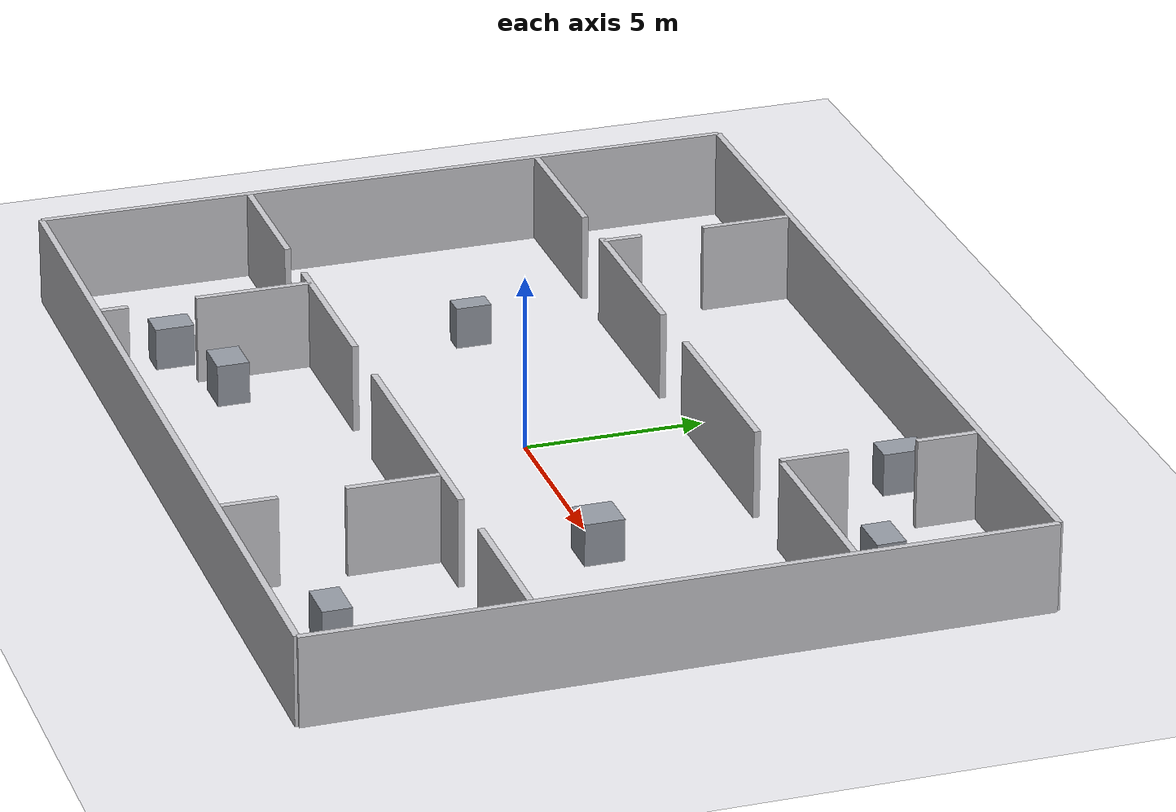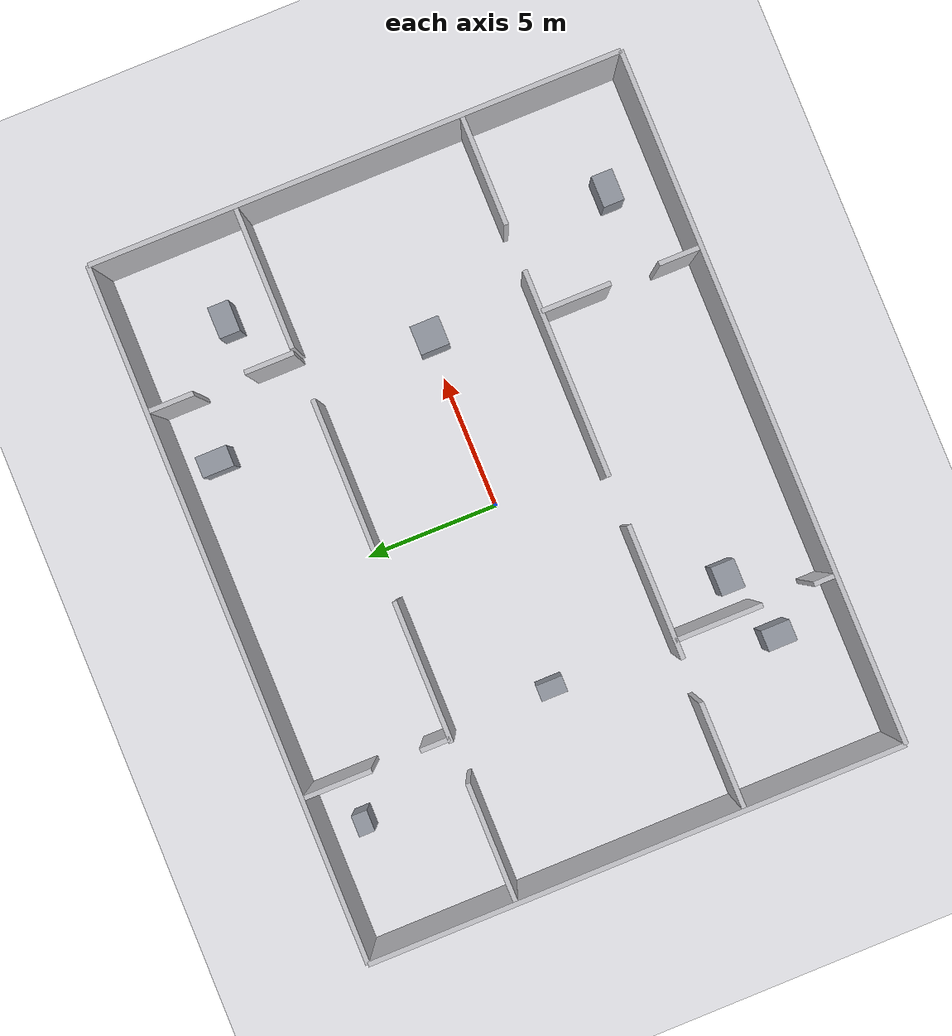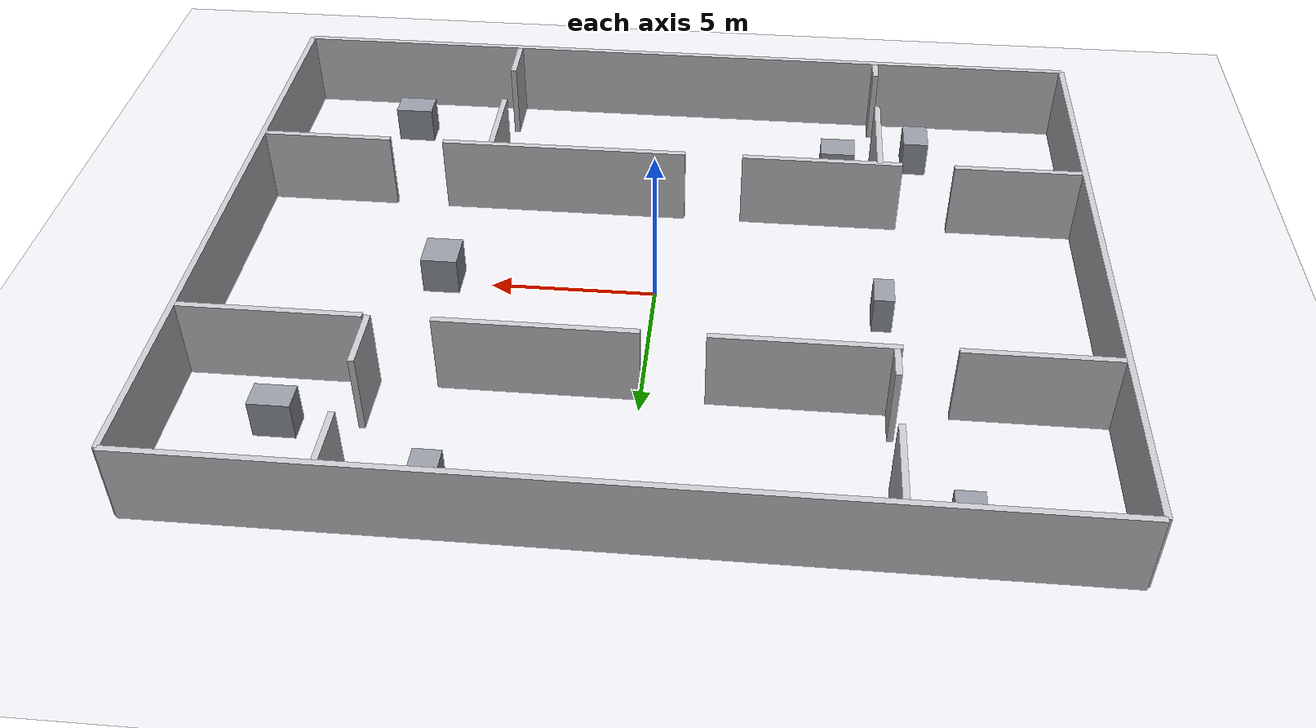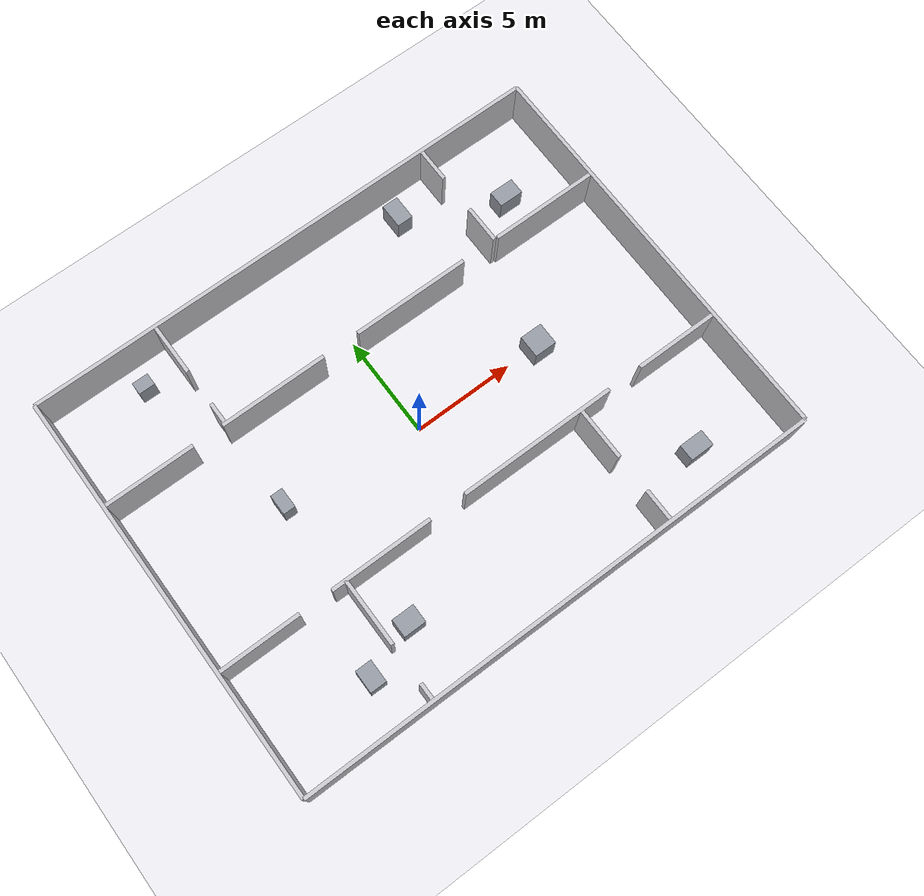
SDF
<?xml version="1.0"?>
<sdf version="1.9"><world name="new_room_world">
<plugin filename="gz-sim-physics-system" name="gz::sim::systems::Physics"/><plugin filename="gz-sim-user-commands-system" name="gz::sim::systems::UserCommands"/><plugin filename="gz-sim-scene-broadcaster-system" name="gz::sim::systems::SceneBroadcaster"/><plugin filename="gz-sim-sensors-system" name="gz::sim::systems::Sensors"><render_engine>ogre2</render_engine></plugin><plugin filename="gz-sim-imu-system" name="gz::sim::systems::Imu"/>
<physics name="new_room_realtime" type="ignored"><max_step_size>0.001</max_step_size><real_time_factor>1</real_time_factor></physics><gravity>0 0 -9.8</gravity><scene><ambient>0.85 0.85 0.87 1</ambient><background>0.68 0.68 0.71 1</background><shadows>false</shadows></scene><light name="sun" type="directional"><cast_shadows>false</cast_shadows><pose>0 0 10 0 0 0</pose><diffuse>0.95 0.95 0.95 1</diffuse><direction>-0.3 0.2 -1</direction></light>
<model name="new_room_ground"><static>true</static><link name="ground_link"><collision name="ground_collision"><geometry><plane><normal>0 0 1</normal><size>40 32</size></plane></geometry></collision><visual name="ground_visual"><geometry><plane><normal>0 0 1</normal><size>40 32</size></plane></geometry><material><ambient>0.92 0.92 0.94 1</ambient><diffuse>0.92 0.92 0.94 1</diffuse></material></visual></link></model>
<model name="mini_hospital_structure"><static>true</static><link name="structure">
<collision name="mx048_c000"><pose>0 10 1.25 0 0 0</pose><geometry><box><size>26 0.18 2.5</size></box></geometry></collision><visual name="mx048_v000"><pose>0 10 1.25 0 0 0</pose><geometry><box><size>26 0.18 2.5</size></box></geometry><material><ambient>0.78 0.78 0.80 1</ambient><diffuse>0.78 0.78 0.80 1</diffuse></material></visual>
<collision name="mx048_c001"><pose>0 -10 1.25 0 0 0</pose><geometry><box><size>26 0.18 2.5</size></box></geometry></collision><visual name="mx048_v001"><pose>0 -10 1.25 0 0 0</pose><geometry><box><size>26 0.18 2.5</size></box></geometry><material><ambient>0.78 0.78 0.80 1</ambient><diffuse>0.78 0.78 0.80 1</diffuse></material></visual>
<collision name="mx048_c002"><pose>-13 0 1.25 0 0 0</pose><geometry><box><size>0.18 20 2.5</size></box></geometry></collision><visual name="mx048_v002"><pose>-13 0 1.25 0 0 0</pose><geometry><box><size>0.18 20 2.5</size></box></geometry><material><ambient>0.78 0.78 0.80 1</ambient><diffuse>0.78 0.78 0.80 1</diffuse></material></visual>
<collision name="mx048_c003"><pose>13 0 1.25 0 0 0</pose><geometry><box><size>0.18 20 2.5</size></box></geometry></collision><visual name="mx048_v003"><pose>13 0 1.25 0 0 0</pose><geometry><box><size>0.18 20 2.5</size></box></geometry><material><ambient>0.78 0.78 0.80 1</ambient><diffuse>0.78 0.78 0.80 1</diffuse></material></visual>
<collision name="mx048_c004"><pose>-10.73 4.5 1.25 0 0 0</pose><geometry><box><size>4.36 0.18 2.5</size></box></geometry></collision><visual name="mx048_v004"><pose>-10.73 4.5 1.25 0 0 0</pose><geometry><box><size>4.36 0.18 2.5</size></box></geometry><material><ambient>0.78 0.78 0.80 1</ambient><diffuse>0.78 0.78 0.80 1</diffuse></material></visual>
<collision name="mx048_c005"><pose>-4.425 4.5 1.25 0 0 0</pose><geometry><box><size>5.25 0.18 2.5</size></box></geometry></collision><visual name="mx048_v005"><pose>-4.425 4.5 1.25 0 0 0</pose><geometry><box><size>5.25 0.18 2.5</size></box></geometry><material><ambient>0.78 0.78 0.80 1</ambient><diffuse>0.78 0.78 0.80 1</diffuse></material></visual>
<collision name="mx048_c006"><pose>2.875 4.5 1.25 0 0 0</pose><geometry><box><size>5.75 0.18 2.5</size></box></geometry></collision><visual name="mx048_v006"><pose>2.875 4.5 1.25 0 0 0</pose><geometry><box><size>5.75 0.18 2.5</size></box></geometry><material><ambient>0.78 0.78 0.80 1</ambient><diffuse>0.78 0.78 0.80 1</diffuse></material></visual>
<collision name="mx048_c007"><pose>10.28 4.5 1.25 0 0 0</pose><geometry><box><size>5.26 0.18 2.5</size></box></geometry></collision><visual name="mx048_v007"><pose>10.28 4.5 1.25 0 0 0</pose><geometry><box><size>5.26 0.18 2.5</size></box></geometry><material><ambient>0.78 0.78 0.80 1</ambient><diffuse>0.78 0.78 0.80 1</diffuse></material></visual>
<collision name="mx048_c008"><pose>-10.955 -4 1.25 0 0 0</pose><geometry><box><size>3.91 0.18 2.5</size></box></geometry></collision><visual name="mx048_v008"><pose>-10.955 -4 1.25 0 0 0</pose><geometry><box><size>3.91 0.18 2.5</size></box></geometry><material><ambient>0.78 0.78 0.80 1</ambient><diffuse>0.78 0.78 0.80 1</diffuse></material></visual>
<collision name="mx048_c009"><pose>-4.9 -4 1.25 0 0 0</pose><geometry><box><size>5 0.18 2.5</size></box></geometry></collision><visual name="mx048_v009"><pose>-4.9 -4 1.25 0 0 0</pose><geometry><box><size>5 0.18 2.5</size></box></geometry><material><ambient>0.78 0.78 0.80 1</ambient><diffuse>0.78 0.78 0.80 1</diffuse></material></visual>
<collision name="mx048_c010"><pose>3.275 -4 1.25 0 0 0</pose><geometry><box><size>7.75 0.18 2.5</size></box></geometry></collision><visual name="mx048_v010"><pose>3.275 -4 1.25 0 0 0</pose><geometry><box><size>7.75 0.18 2.5</size></box></geometry><material><ambient>0.78 0.78 0.80 1</ambient><diffuse>0.78 0.78 0.80 1</diffuse></material></visual>
<collision name="mx048_c011"><pose>10.88 -4 1.25 0 0 0</pose><geometry><box><size>4.06 0.18 2.5</size></box></geometry></collision><visual name="mx048_v011"><pose>10.88 -4 1.25 0 0 0</pose><geometry><box><size>4.06 0.18 2.5</size></box></geometry><material><ambient>0.78 0.78 0.80 1</ambient><diffuse>0.78 0.78 0.80 1</diffuse></material></visual>
<collision name="mx048_c012"><pose>-6.9 5.05 1.25 0 0 0</pose><geometry><box><size>0.18 1.1 2.5</size></box></geometry></collision><visual name="mx048_v012"><pose>-6.9 5.05 1.25 0 0 0</pose><geometry><box><size>0.18 1.1 2.5</size></box></geometry><material><ambient>0.78 0.78 0.80 1</ambient><diffuse>0.78 0.78 0.80 1</diffuse></material></visual>
<collision name="mx048_c013"><pose>-6.9 8.655 1.25 0 0 0</pose><geometry><box><size>0.18 2.51 2.5</size></box></geometry></collision><visual name="mx048_v013"><pose>-6.9 8.655 1.25 0 0 0</pose><geometry><box><size>0.18 2.51 2.5</size></box></geometry><material><ambient>0.78 0.78 0.80 1</ambient><diffuse>0.78 0.78 0.80 1</diffuse></material></visual>
<collision name="mx048_c014"><pose>7.5 5.425 1.25 0 0 0</pose><geometry><box><size>0.18 1.85 2.5</size></box></geometry></collision><visual name="mx048_v014"><pose>7.5 5.425 1.25 0 0 0</pose><geometry><box><size>0.18 1.85 2.5</size></box></geometry><material><ambient>0.78 0.78 0.80 1</ambient><diffuse>0.78 0.78 0.80 1</diffuse></material></visual>
<collision name="mx048_c015"><pose>7.5 9.08 1.25 0 0 0</pose><geometry><box><size>0.18 1.66 2.5</size></box></geometry></collision><visual name="mx048_v015"><pose>7.5 9.08 1.25 0 0 0</pose><geometry><box><size>0.18 1.66 2.5</size></box></geometry><material><ambient>0.78 0.78 0.80 1</ambient><diffuse>0.78 0.78 0.80 1</diffuse></material></visual>
<collision name="mx048_c016"><pose>-6.7 -9.53 1.25 0 0 0</pose><geometry><box><size>0.18 0.76 2.5</size></box></geometry></collision><visual name="mx048_v016"><pose>-6.7 -9.53 1.25 0 0 0</pose><geometry><box><size>0.18 0.76 2.5</size></box></geometry><material><ambient>0.78 0.78 0.80 1</ambient><diffuse>0.78 0.78 0.80 1</diffuse></material></visual>
<collision name="mx048_c017"><pose>-6.7 -5.625 1.25 0 0 0</pose><geometry><box><size>0.18 3.25 2.5</size></box></geometry></collision><visual name="mx048_v017"><pose>-6.7 -5.625 1.25 0 0 0</pose><geometry><box><size>0.18 3.25 2.5</size></box></geometry><material><ambient>0.78 0.78 0.80 1</ambient><diffuse>0.78 0.78 0.80 1</diffuse></material></visual>
<collision name="mx048_c018"><pose>5.6 -9.155 1.25 0 0 0</pose><geometry><box><size>0.18 1.51 2.5</size></box></geometry></collision><visual name="mx048_v018"><pose>5.6 -9.155 1.25 0 0 0</pose><geometry><box><size>0.18 1.51 2.5</size></box></geometry><material><ambient>0.78 0.78 0.80 1</ambient><diffuse>0.78 0.78 0.80 1</diffuse></material></visual>
<collision name="mx048_c019"><pose>5.6 -5.3 1.25 0 0 0</pose><geometry><box><size>0.18 2.6 2.5</size></box></geometry></collision><visual name="mx048_v019"><pose>5.6 -5.3 1.25 0 0 0</pose><geometry><box><size>0.18 2.6 2.5</size></box></geometry><material><ambient>0.78 0.78 0.80 1</ambient><diffuse>0.78 0.78 0.80 1</diffuse></material></visual>
<collision name="mx048_c020"><pose>-8.7 8.6 0.6 0 0 0</pose><geometry><box><size>0.8 0.6 1.2</size></box></geometry></collision><visual name="mx048_v020"><pose>-8.7 8.6 0.6 0 0 0</pose><geometry><box><size>0.8 0.6 1.2</size></box></geometry><material><ambient>0.58 0.60 0.64 1</ambient><diffuse>0.58 0.60 0.64 1</diffuse></material></visual>
<collision name="mx048_c021"><pose>5.2 8.7 0.6 0 0 0</pose><geometry><box><size>0.8 1.2 1.2</size></box></geometry></collision><visual name="mx048_v021"><pose>5.2 8.7 0.6 0 0 0</pose><geometry><box><size>0.8 1.2 1.2</size></box></geometry><material><ambient>0.58 0.60 0.64 1</ambient><diffuse>0.58 0.60 0.64 1</diffuse></material></visual>
<collision name="mx048_c022"><pose>9.8 6.5 0.6 0 0 0</pose><geometry><box><size>1.2 0.8 1.2</size></box></geometry></collision><visual name="mx048_v022"><pose>9.8 6.5 0.6 0 0 0</pose><geometry><box><size>1.2 0.8 1.2</size></box></geometry><material><ambient>0.58 0.60 0.64 1</ambient><diffuse>0.58 0.60 0.64 1</diffuse></material></visual>
<collision name="mx048_c023"><pose>-8.1 -7.6 0.6 0 0 0</pose><geometry><box><size>0.8 1.1 1.2</size></box></geometry></collision><visual name="mx048_v023"><pose>-8.1 -7.6 0.6 0 0 0</pose><geometry><box><size>0.8 1.1 1.2</size></box></geometry><material><ambient>0.58 0.60 0.64 1</ambient><diffuse>0.58 0.60 0.64 1</diffuse></material></visual>
<collision name="mx048_c024"><pose>-5.5 -6.7 0.6 0 0 0</pose><geometry><box><size>1.1 0.9 1.2</size></box></geometry></collision><visual name="mx048_v024"><pose>-5.5 -6.7 0.6 0 0 0</pose><geometry><box><size>1.1 0.9 1.2</size></box></geometry><material><ambient>0.58 0.60 0.64 1</ambient><diffuse>0.58 0.60 0.64 1</diffuse></material></visual>
<collision name="mx048_c025"><pose>9 -8 0.6 0 0 0</pose><geometry><box><size>1.2 0.8 1.2</size></box></geometry></collision><visual name="mx048_v025"><pose>9 -8 0.6 0 0 0</pose><geometry><box><size>1.2 0.8 1.2</size></box></geometry><material><ambient>0.58 0.60 0.64 1</ambient><diffuse>0.58 0.60 0.64 1</diffuse></material></visual>
<collision name="mx048_c026"><pose>-6.8 0.6 0.6 0 0 0</pose><geometry><box><size>0.6 1 1.2</size></box></geometry></collision><visual name="mx048_v026"><pose>-6.8 0.6 0.6 0 0 0</pose><geometry><box><size>0.6 1 1.2</size></box></geometry><material><ambient>0.58 0.60 0.64 1</ambient><diffuse>0.58 0.60 0.64 1</diffuse></material></visual>
<collision name="mx048_c027"><pose>6.5 -0.1 0.6 0 0 0</pose><geometry><box><size>1.1 1.1 1.2</size></box></geometry></collision><visual name="mx048_v027"><pose>6.5 -0.1 0.6 0 0 0</pose><geometry><box><size>1.1 1.1 1.2</size></box></geometry><material><ambient>0.58 0.60 0.64 1</ambient><diffuse>0.58 0.60 0.64 1</diffuse></material></visual>
</link></model></world></sdf>
